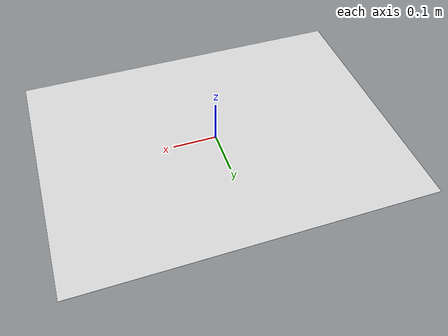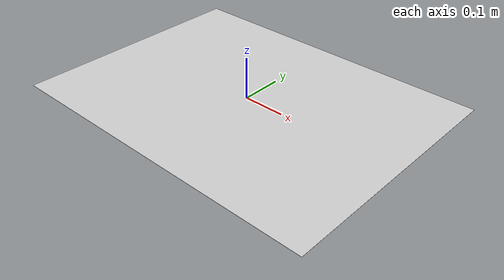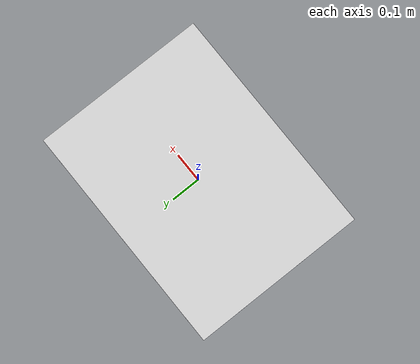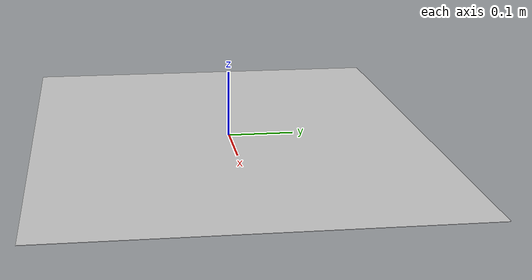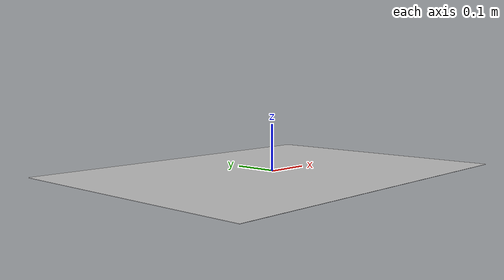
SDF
<?xml version="1.0" ?>
<sdf version="1.5">

 <model name="pad_red_stripes">
    <static>true</static>
    <link name='pad'>

     <collision name='collision'>
     <!-- In Gazebo 7 there appears to be a bug that causes an inconsistency between the visual collision on a plane and the collision phisics -->
  <!-- correct pose for the visualization of collisions, active by selecting "view -> collisions" -->
       <pose>1.0 1.0 -5.8 0 1.5708 0</pose> <!-- correct pose for the simulated collision physics -->
        <geometry>
          <plane>
            <normal>1 0 0</normal>
            <size>2 2</size>
          </plane>
        </geometry>
        <surface>
          <friction>
            <ode>
              <mu>0.2</mu>
              <mu2>.2</mu2>
            </ode>
          </friction>
        </surface>
     </collision>

      <visual name='visual-pad'>
        <pose>0.0 0.0 0.001 0 0 0</pose>
        <cast_shadows>false</cast_shadows>
        <geometry>
          <plane>
            <normal>0 0 1</normal>
            <size>0.8 0.6</size>
          </plane>
        </geometry>
        <material>
          <ambient>0.85 0.85 0.85 1</ambient>
          <diffuse>0.85 0.85 0.85 1</diffuse>
          <specular>0.1 0.1 0.1 1</specular>
        </material>
      </visual>
    </link>

 </model>
</sdf>
